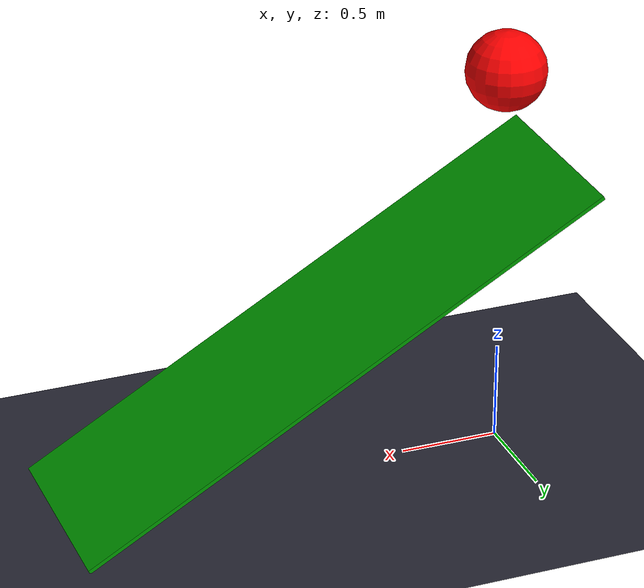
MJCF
<!-- Incluir esquema para validar ficheros xml -->
<mujoco model="Ejemplo 16"
        xmlns:xsi="http://www.w3.org/2001/XMLSchema-instance"
        xsi:noNamespaceSchemaLocation="https://raw.githubusercontent.com/google-deepmind/mujoco/3.13.0/src/xml/generated/mjcf.xsd"
        >

  <!-- Recursos -->
  <asset>

    <!-- Establecer textura de "ajedrez",
         con dos colores: "azul apagado" y "gris" -->
    <texture name="grid" type="2d"
      builtin="checker" width="512" height="512"
      rgb1="0 0 .1" rgb2=".3 .3 .3" />

    <!-- Establecer el color del cielo -->
    <texture type="skybox" builtin="gradient"
      rgb1="0 0 1" rgb2="0 0 1"
      width="32" height="512"/>

    <!-- Definir un material etiquetado como "satinado" -->
    <!-- que incluye un "grid" -->
    <material name="azulejos" reflectance=".2" texture="grid"/>
  </asset>

  <worldbody>

    <!-- Suelo del mundo -->
    <!-- Suelo a cuadrados con reflejos -->
    <geom type="plane" size="0 0 1" material="azulejos"/>

    <!-- Rampa unida al mundo -->
    <!-- Inclinada 30 grados. Color verde -->
    <geom type="box" size="1.5 .5 .01"
          euler="0 30 0"
          pos="1 0 0.75"
          rgba="0 0.6 0 1"/>

    <!-- Colocar una luz encima de la bola, a una distancia
         fija de su centro de masas. Es decir, que
         "sigue" a la bola: ES UN FOCO! -->
    <light pos="0 0 2.6" mode="trackcom"/>

    <!-- Bola libre: De color rojo  -->
    <body pos="0 0 2">
      <geom type="sphere" size="0.2"
            rgba="1 0 0 1" />
      <joint type="free"/>
    </body>

  </worldbody>
</mujoco>
